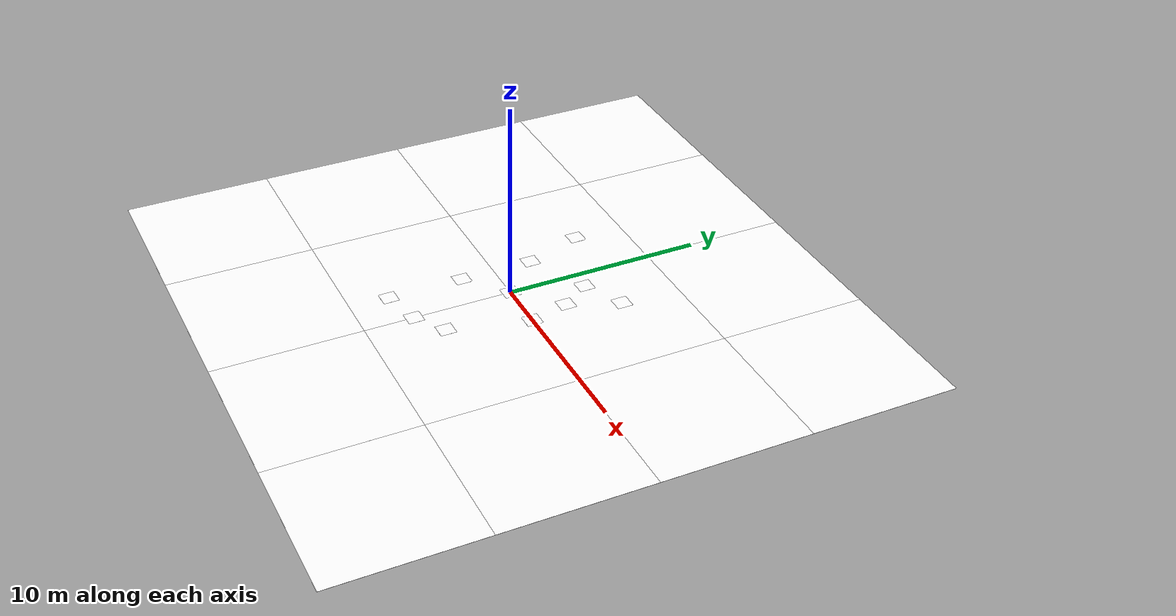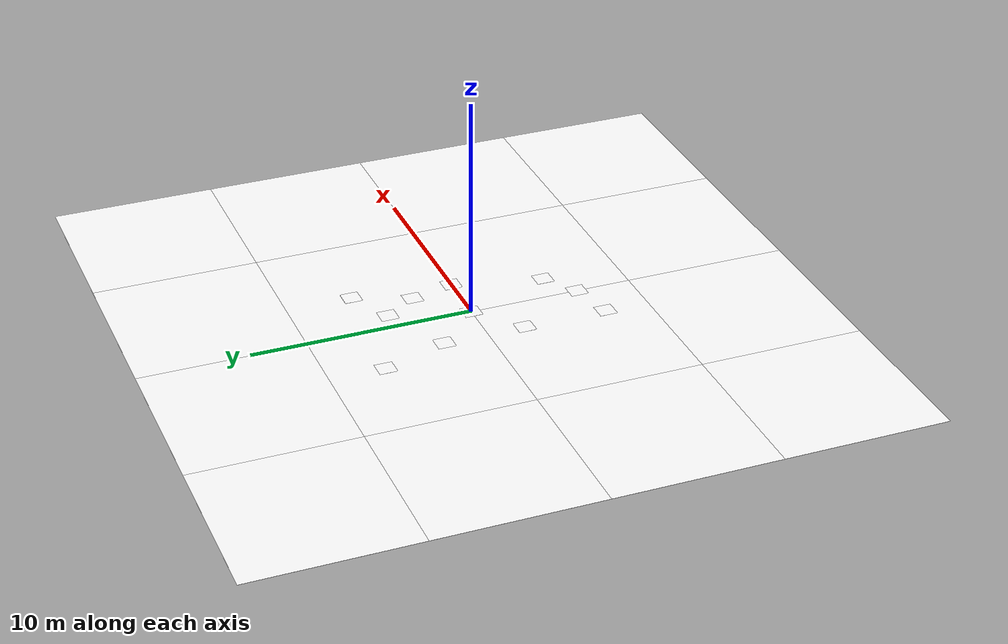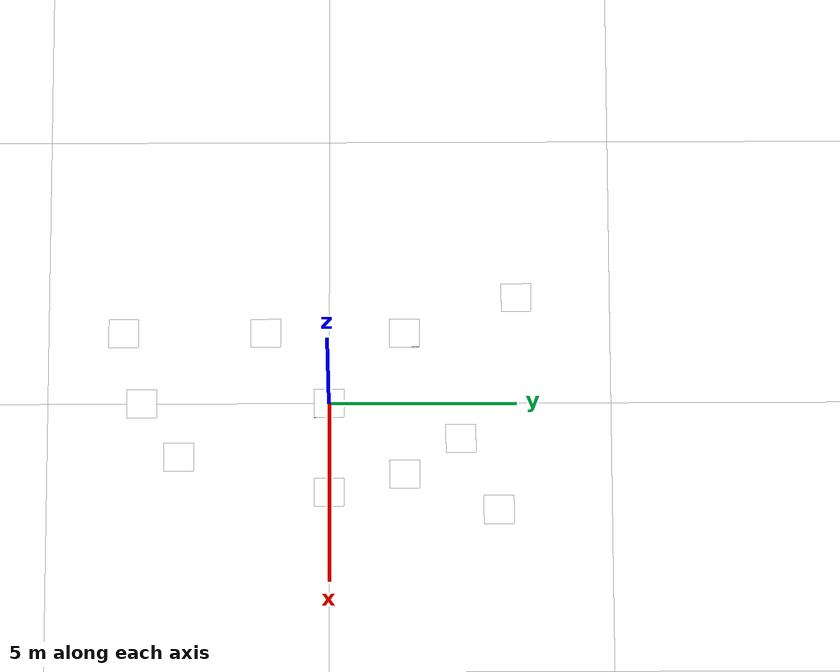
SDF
<sdf version="1.10">
 <world name="eletroquad26_m1">
  <plugin name="gz::sim::systems::Physics" filename="gz-sim-physics-system"/>
  <plugin name="gz::sim::systems::UserCommands" filename="gz-sim-user-commands-system"/>
  <plugin name="gz::sim::systems::SceneBroadcaster" filename="gz-sim-scene-broadcaster-system"/>
  <plugin name="gz::sim::systems::Contact" filename="gz-sim-contact-system"/>
  <plugin name="gz::sim::systems::Imu" filename="gz-sim-imu-system"/>
  <plugin name="gz::sim::systems::AirPressure" filename="gz-sim-air-pressure-system"/>
  <plugin name="gz::sim::systems::Sensors" filename="gz-sim-sensors-system">
   <render_engine>ogre2</render_engine>
  </plugin>
  <physics type="ode">
   <max_step_size>0.001</max_step_size>
   <real_time_factor>1</real_time_factor>
   <real_time_update_rate>1000</real_time_update_rate>
  </physics>
  <gravity>0 0 -9.8000000000000007</gravity>
  <magnetic_field>5.5644999999999998e-06 2.2875799999999999e-05 -4.2388400000000002e-05</magnetic_field>
  <atmosphere type="adiabatic"/>
  <scene>
   <ambient>0.400000006 0.400000006 0.400000006 1</ambient>
   <background>0.699999988 0.699999988 0.699999988 1</background>
   <shadows>true</shadows>
  </scene>
  <model name="gabarito">
   <include merge="true"><uri>models/eletroquad_26/miscs/default_platform</uri></include>
   <pose degrees="true">2 2 0.011 0 0 -90</pose>
   <static>true</static>
  </model>
  <model name="shape0">
   <include merge="true"><uri>models/eletroquad_26/bouncing/shapes/hexagon</uri></include>
   <pose degrees="true">2 2 0.013 0 0 -90</pose>
   <static>true</static>
  </model>
  <model name="3hexagon">
   <include merge="true"><uri>models/eletroquad_26/miscs/default_platform</uri></include>
   <pose degrees="true">-3 5 0.011 0 0 -90</pose>
   <static>true</static>
  </model>
  <model name="shape1">
   <include merge="true"><uri>models/eletroquad_26/bouncing/shapes/hexagon</uri></include>
   <pose degrees="true">-3 5 0.012 0 0 -90</pose>
   <static>true</static>
  </model>
  <model name="num1">
   <include merge="true"><uri>models/eletroquad_26/bouncing/nums/num_3</uri></include>
   <pose degrees="true">-3 5 0.013 0 0 -90</pose>
   <static>true</static>
  </model>
  <model name="4hexagon">
   <include merge="true"><uri>models/eletroquad_26/miscs/default_platform</uri></include>
   <pose degrees="true">1.5 -4 0.011 0 0 -90</pose>
   <static>true</static>
  </model>
  <model name="shape2">
   <include merge="true"><uri>models/eletroquad_26/bouncing/shapes/hexagon</uri></include>
   <pose degrees="true">1.5 -4 0.012 0 0 -90</pose>
   <static>true</static>
  </model>
  <model name="num2">
   <include merge="true"><uri>models/eletroquad_26/bouncing/nums/num_4</uri></include>
   <pose degrees="true">1.5 -4 0.013 0 0 -90</pose>
   <static>true</static>
  </model>
  <model name="5hexagon">
   <include merge="true"><uri>models/eletroquad_26/miscs/default_platform</uri></include>
   <pose degrees="true">1 3.5 0.011 0 0 -90</pose>
   <static>true</static>
  </model>
  <model name="shape3">
   <include merge="true"><uri>models/eletroquad_26/bouncing/shapes/hexagon</uri></include>
   <pose degrees="true">1 3.5 0.012 0 0 -90</pose>
   <static>true</static>
  </model>
  <model name="num3">
   <include merge="true"><uri>models/eletroquad_26/bouncing/nums/num_5</uri></include>
   <pose degrees="true">1 3.5 0.013 0 0 -90</pose>
   <static>true</static>
  </model>
  <model name="3star">
   <include merge="true"><uri>models/eletroquad_26/miscs/default_platform</uri></include>
   <pose degrees="true">-2 -5.5 0.011 0 0 -90</pose>
   <static>true</static>
  </model>
  <model name="shape4">
   <include merge="true"><uri>models/eletroquad_26/bouncing/shapes/star</uri></include>
   <pose degrees="true">-2 -5.5 0.012 0 0 -90</pose>
   <static>true</static>
  </model>
  <model name="num4">
   <include merge="true"><uri>models/eletroquad_26/bouncing/nums/num_3</uri></include>
   <pose degrees="true">-2 -5.5 0.013 0 0 -90</pose>
   <static>true</static>
  </model>
  <model name="4star">
   <include merge="true"><uri>models/eletroquad_26/miscs/default_platform</uri></include>
   <pose degrees="true">-2 -1.7 0.011 0 0 -90</pose>
   <static>true</static>
  </model>
  <model name="shape5">
   <include merge="true"><uri>models/eletroquad_26/bouncing/shapes/star</uri></include>
   <pose degrees="true">-2 -1.7 0.012 0 0 -90</pose>
   <static>true</static>
  </model>
  <model name="num5">
   <include merge="true"><uri>models/eletroquad_26/bouncing/nums/num_4</uri></include>
   <pose degrees="true">-2 -1.7 0.013 0 0 -90</pose>
   <static>true</static>
  </model>
  <model name="5star">
   <include merge="true"><uri>models/eletroquad_26/miscs/default_platform</uri></include>
   <pose degrees="true">-2 2 0.011 0 0 -90</pose>
   <static>true</static>
  </model>
  <model name="shape6">
   <include merge="true"><uri>models/eletroquad_26/bouncing/shapes/star</uri></include>
   <pose degrees="true">-2 2 0.012 0 0 -90</pose>
   <static>true</static>
  </model>
  <model name="num6">
   <include merge="true"><uri>models/eletroquad_26/bouncing/nums/num_5</uri></include>
   <pose degrees="true">-2 2 0.013 0 0 -90</pose>
   <static>true</static>
  </model>
  <model name="3triangle">
   <include merge="true"><uri>models/eletroquad_26/miscs/default_platform</uri></include>
   <pose degrees="true">0 -5 0.011 0 0 -90</pose>
   <static>true</static>
  </model>
  <model name="shape7">
   <include merge="true"><uri>models/eletroquad_26/bouncing/shapes/triangle</uri></include>
   <pose degrees="true">0 -5 0.012 0 0 -90</pose>
   <static>true</static>
  </model>
  <model name="num7">
   <include merge="true"><uri>models/eletroquad_26/bouncing/nums/num_3</uri></include>
   <pose degrees="true">0 -5 0.013 0 0 -90</pose>
   <static>true</static>
  </model>
  <model name="4triangle">
   <include merge="true"><uri>models/eletroquad_26/miscs/default_platform</uri></include>
   <pose degrees="true">2.5 0 0.011 0 0 -90</pose>
   <static>true</static>
  </model>
  <model name="shape8">
   <include merge="true"><uri>models/eletroquad_26/bouncing/shapes/triangle</uri></include>
   <pose degrees="true">2.5 0 0.012 0 0 -90</pose>
   <static>true</static>
  </model>
  <model name="num8">
   <include merge="true"><uri>models/eletroquad_26/bouncing/nums/num_4</uri></include>
   <pose degrees="true">2.5 0 0.013 0 0 -90</pose>
   <static>true</static>
  </model>
  <model name="5triangle">
   <include merge="true"><uri>models/eletroquad_26/miscs/default_platform</uri></include>
   <pose degrees="true">3 4.5 0.011 0 0 -90</pose>
   <static>true</static>
  </model>
  <model name="shape9">
   <include merge="true"><uri>models/eletroquad_26/bouncing/shapes/triangle</uri></include>
   <pose degrees="true">3 4.5 0.012 0 0 -90</pose>
   <static>true</static>
  </model>
  <model name="num9">
   <include merge="true"><uri>models/eletroquad_26/bouncing/nums/num_5</uri></include>
   <pose degrees="true">3 4.5 0.013 0 0 -90</pose>
   <static>true</static>
  </model>
  <include>
   <uri>models/eletroquad_26/miscs/takeoff_platform</uri>
   <static>true</static>
   <pose degrees="true">0 0 0.011 0 0 0</pose>
  </include>
  <include>
   <uri>models/eletroquad_26/miscs/arenas/rectangle</uri>
   <static>true</static>
   <pose degrees="true">0 0 0.01 0 0 0</pose>
  </include>
  <include><uri>models/eletroquad_26/miscs/ground_level</uri></include>
  <light name="sun" type="directional">
   <pose>0 0 10 0 0 0</pose>
   <intensity>1</intensity>
   <direction>-0.5 0.10000000000000001 -0.90000000000000002</direction>
   <diffuse>0.800000012 0.800000012 0.800000012 1</diffuse>
   <specular>0.200000003 0.200000003 0.200000003 1</specular>
   <attenuation>
    <range>1000</range>
    <linear>0.01</linear>
    <constant>0.90000000000000002</constant>
    <quadratic>0.001</quadratic>
   </attenuation>
   <spot><inner_angle>0</inner_angle><outer_angle>0</outer_angle><falloff>0</falloff></spot>
  </light>
  <spherical_coordinates>
   <surface_model>EARTH_WGS84</surface_model>
   <world_frame_orientation>ENU</world_frame_orientation>
   <latitude_deg>47.397971057728974</latitude_deg>
   <longitude_deg>8.546163739800146</longitude_deg>
   <elevation>0</elevation>
  </spherical_coordinates>
 </world>
</sdf>

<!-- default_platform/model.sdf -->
<sdf version='1.10'>
<model name='default_platform'>
  <link name='default_link'>
    <enable_wind>false</enable_wind>
    <collision name='default_collision'>
      <geometry><cylinder>
        <radius>0.4</radius>
        <length>0.001</length>
      </cylinder></geometry>
      <surface>
        <friction><ode/></friction>
        <bounce/>
        <contact/>
      </surface>
    </collision>
    <visual name='default_visual'>
      <geometry><cylinder>
        <radius>0.4</radius>
        <length>0.001</length>
      </cylinder></geometry>
      <material>
        <ambient>1 1 1 1</ambient>
        <diffuse>1 1 1 1</diffuse>
        <specular>1 1 1 1</specular>
      </material>
    </visual>
  </link>
  <self_collide>false</self_collide>
  <static>true</static>
</model>
</sdf>

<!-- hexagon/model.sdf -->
<sdf version='1.10'>
<model name='hexagon'>
  <link name='hexagon_link'>
    <enable_wind>false</enable_wind>
    <visual name='hexagon_img'>
      <pose>0 0 0.001 0 0 0</pose>
      <geometry><plane>
        <normal>0 0 1</normal>
        <size>0.8 0.8</size>
      </plane></geometry>
        <material>
        <diffuse>1 1 1 1</diffuse>
        <specular>1 1 1 1</specular>
        <pbr>
          <metal>
            <albedo_map>materials/textures/hexagon.png</albedo_map>
            <metalness>0</metalness>
            <roughness>1</roughness>
          </metal>
        </pbr>
        </material>
    </visual>
  </link>
  <self_collide>false</self_collide>
  <static>true</static>
</model>
</sdf>

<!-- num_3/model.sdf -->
<sdf version='1.10'>
<model name='num_3'>
  <link name='num3_link'>
    <enable_wind>false</enable_wind>
    <visual name='num3_img'>
      <pose>0 0 0.001 0 0 0</pose>
      <geometry><plane>
        <normal>0 0 1</normal>
        <size>0.8 0.8</size>
      </plane></geometry>
        <material>
        <diffuse>1 1 1 1</diffuse>
        <specular>1 1 1 1</specular>
        <pbr>
          <metal>
            <albedo_map>materials/textures/num_3.png</albedo_map>
            <metalness>0</metalness>
            <roughness>1</roughness>
          </metal>
        </pbr>
        </material>
    </visual>
  </link>
  <self_collide>false</self_collide>
  <static>true</static>
</model>
</sdf>

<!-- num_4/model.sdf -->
<sdf version='1.10'>
<model name='num_4'>
  <link name='num4_link'>
    <enable_wind>false</enable_wind>
    <visual name='num4_img'>
      <pose>0 0 0.001 0 0 0</pose>
      <geometry><plane>
        <normal>0 0 1</normal>
        <size>0.8 0.8</size>
      </plane></geometry>
        <material>
        <diffuse>1 1 1 1</diffuse>
        <specular>1 1 1 1</specular>
        <pbr>
          <metal>
            <albedo_map>materials/textures/num_4.png</albedo_map>
            <metalness>0</metalness>
            <roughness>1</roughness>
          </metal>
        </pbr>
        </material>
    </visual>
  </link>
  <self_collide>false</self_collide>
  <static>true</static>
</model>
</sdf>

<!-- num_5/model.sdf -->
<sdf version='1.10'>
<model name='num_5'>
  <link name='num5_link'>
    <enable_wind>false</enable_wind>
    <visual name='num5_img'>
      <pose>0 0 0.001 0 0 0</pose>
      <geometry><plane>
        <normal>0 0 1</normal>
        <size>0.8 0.8</size>
      </plane></geometry>
        <material>
        <diffuse>1 1 1 1</diffuse>
        <specular>1 1 1 1</specular>
        <pbr>
          <metal>
            <albedo_map>materials/textures/num_5.png</albedo_map>
            <metalness>0</metalness>
            <roughness>1</roughness>
          </metal>
        </pbr>
        </material>
    </visual>
  </link>
  <self_collide>false</self_collide>
  <static>true</static>
</model>
</sdf>

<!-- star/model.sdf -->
<sdf version='1.10'>
<model name='star'>
  <link name='star_link'>
    <enable_wind>false</enable_wind>
    <visual name='star_img'>
      <pose>0 0 0.001 0 0 0</pose>
      <geometry><plane>
        <normal>0 0 1</normal>
        <size>0.8 0.8</size>
      </plane></geometry>
        <material>
        <diffuse>1 1 1 1</diffuse>
        <specular>1 1 1 1</specular>
        <pbr>
          <metal>
            <albedo_map>materials/textures/star.png</albedo_map>
            <metalness>0</metalness>
            <roughness>1</roughness>
          </metal>
        </pbr>
        </material>
    </visual>
  </link>
  <self_collide>false</self_collide>
  <static>true</static>
</model>
</sdf>

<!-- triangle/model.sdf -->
<sdf version='1.10'>
<model name='triangle'>
  <link name='triangle_link'>
    <enable_wind>false</enable_wind>
    <visual name='triangle_img'>
      <pose>0 0 0.001 0 0 0</pose>
      <geometry><plane>
        <normal>0 0 1</normal>
        <size>0.8 0.8</size>
      </plane></geometry>
        <material>
        <diffuse>1 1 1 1</diffuse>
        <specular>1 1 1 1</specular>
        <pbr>
          <metal>
            <albedo_map>materials/textures/triangle.png</albedo_map>
            <metalness>0</metalness>
            <roughness>1</roughness>
          </metal>
        </pbr>
        </material>
    </visual>
  </link>
  <self_collide>false</self_collide>
  <static>true</static>
</model>
</sdf>

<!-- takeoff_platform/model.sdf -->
<sdf version='1.10'>
<model name='takeoff_platform'>
  <include merge='true'><uri>models/eletroquad_26/miscs/default_platform</uri></include>
  <link name='takeoff_link'>
    <enable_wind>false</enable_wind>
    <visual name='takeoff_image'>
      <pose>0 0 0.001 0 0 0</pose>
      <geometry><plane>
        <normal>0 0 1</normal>
        <size>0.8 0.8</size>
      </plane></geometry>
        <material>
        <diffuse>1 1 1 1</diffuse>
        <specular>1 1 1 1</specular>
        <pbr>
          <metal>
            <albedo_map>materials/textures/takeoff.png</albedo_map>
            <metalness>0</metalness>
            <roughness>1</roughness>
          </metal>
        </pbr>
        </material>
    </visual>
  </link>
  <self_collide>false</self_collide>
  <static>true</static>
</model>
</sdf>

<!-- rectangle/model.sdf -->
<sdf version='1.10'>
<model name='arena'>
  <link name='arena_link'>
    <enable_wind>false</enable_wind>
    <collision name='arena_collision'>
      <geometry><plane>
        <normal>0 0 1</normal>
        <size>7 13</size>
      </plane></geometry>
      <surface>
        <friction><ode/></friction>
        <bounce/>
        <contact/>
      </surface>
    </collision>
    <visual name='arena_visual'>
      <geometry><plane>
        <normal>0 0 1</normal>
        <size>7 13</size>
      </plane></geometry>
      <material>
        <ambient>0.4 0.4 0.4 1</ambient>
        <diffuse>1 1 1 1</diffuse>
        <specular>1 1 1 1</specular>
      </material>
    </visual>
  </link>
  <self_collide>false</self_collide>
</model>
</sdf>

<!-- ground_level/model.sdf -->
<sdf version='1.9'>
  <model name='ground_plane'>
    <static>true</static>
    <pose>0 0 0 0 0 0</pose>
    <self_collide>false</self_collide>
    <link name='link'>
      <collision name='collision'>
        <geometry>
          <plane>
            <normal>0 0 1</normal>
            <size>30 30</size>
          </plane>
        </geometry>
        <surface>
          <friction>
            <ode/>
          </friction>
          <bounce/>
          <contact/>
        </surface>
      </collision>
      <visual name='visual1'>
        <pose>-11.25 -11.25 0 0 0 1.5708</pose>
        <geometry>
          <plane>
            <normal>0 0 1</normal>
            <size>7.5 7.5</size>
          </plane>
        </geometry>
        <material>
          <diffuse>1.0 1.0 1.0</diffuse>
          <specular>1.0 1.0 1.0</specular>
          <pbr>
            <metal>
              <albedo_map>materials/textures/grass.png</albedo_map>
              <metalness>0</metalness>
              <roughness>0.7</roughness>
            </metal>
          </pbr>
        </material>
      </visual>
      <visual name='visual2'>
        <pose>-3.75 -11.25 0 0 0 3.14159</pose>
        <geometry>
          <plane>
            <normal>0 0 1</normal>
            <size>7.5 7.5</size>
          </plane>
        </geometry>
        <material>
          <diffuse>1.0 1.0 1.0</diffuse>
          <specular>1.0 1.0 1.0</specular>
          <pbr>
            <metal>
              <albedo_map>materials/textures/grass.png</albedo_map>
              <metalness>0</metalness>
              <roughness>0.7</roughness>
            </metal>
          </pbr>
        </material>
      </visual>
      <visual name='visual3'>
        <pose>3.75 -11.25 0 0 0 4.71239</pose>
        <geometry>
          <plane>
            <normal>0 0 1</normal>
            <size>7.5 7.5</size>
          </plane>
        </geometry>
        <material>
          <diffuse>1.0 1.0 1.0</diffuse>
          <specular>1.0 1.0 1.0</specular>
          <pbr>
            <metal>
              <albedo_map>materials/textures/grass.png</albedo_map>
              <metalness>0</metalness>
              <roughness>0.7</roughness>
            </metal>
          </pbr>
        </material>
      </visual>
      <visual name='visual4'>
        <pose>11.25 -11.25 0 0 0 0</pose>
        <geometry>
          <plane>
            <normal>0 0 1</normal>
            <size>7.5 7.5</size>
          </plane>
        </geometry>
        <material>
          <diffuse>1.0 1.0 1.0</diffuse>
          <specular>1.0 1.0 1.0</specular>
          <pbr>
            <metal>
              <albedo_map>materials/textures/grass.png</albedo_map>
              <metalness>0</metalness>
              <roughness>0.7</roughness>
            </metal>
          </pbr>
        </material>
      </visual>
      <visual name='visual5'>
        <pose>-11.25 -3.75 0 0 0 3.14159</pose>
        <geometry>
          <plane>
            <normal>0 0 1</normal>
            <size>7.5 7.5</size>
          </plane>
        </geometry>
        <material>
          <diffuse>1.0 1.0 1.0</diffuse>
          <specular>1.0 1.0 1.0</specular>
          <pbr>
            <metal>
              <albedo_map>materials/textures/grass.png</albedo_map>
              <metalness>0</metalness>
              <roughness>0.7</roughness>
            </metal>
          </pbr>
        </material>
      </visual>
      <visual name='visual6'>
        <pose>-3.75 -3.75 0 0 0 1.5708</pose>
        <geometry>
          <plane>
            <normal>0 0 1</normal>
            <size>7.5 7.5</size>
          </plane>
        </geometry>
        <material>
          <diffuse>1.0 1.0 1.0</diffuse>
          <specular>1.0 1.0 1.0</specular>
          <pbr>
            <metal>
              <albedo_map>materials/textures/grass.png</albedo_map>
              <metalness>0</metalness>
              <roughness>0.7</roughness>
            </metal>
          </pbr>
        </material>
      </visual>
      <visual name='visual7'>
        <pose>3.75 -3.75 0 0 0 0</pose>
        <geometry>
          <plane>
            <normal>0 0 1</normal>
            <size>7.5 7.5</size>
          </plane>
        </geometry>
        <material>
          <diffuse>1.0 1.0 1.0</diffuse>
          <specular>1.0 1.0 1.0</specular>
          <pbr>
            <metal>
              <albedo_map>materials/textures/grass.png</albedo_map>
              <metalness>0</metalness>
              <roughness>0.7</roughness>
            </metal>
          </pbr>
        </material>
      </visual>
      <visual name='visual8'>
        <pose>11.25 -3.75 0 0 0 4.71239</pose>
        <geometry>
          <plane>
            <normal>0 0 1</normal>
            <size>7.5 7.5</size>
          </plane>
        </geometry>
        <material>
          <diffuse>1.0 1.0 1.0</diffuse>
          <specular>1.0 1.0 1.0</specular>
          <pbr>
            <metal>
              <albedo_map>materials/textures/grass.png</albedo_map>
              <metalness>0</metalness>
              <roughness>0.7</roughness>
            </metal>
          </pbr>
        </material>
      </visual>
      <visual name='visual9'>
        <pose>-11.25 3.75 0 0 0 0</pose>
        <geometry>
          <plane>
            <normal>0 0 1</normal>
            <size>7.5 7.5</size>
          </plane>
        </geometry>
        <material>
          <diffuse>1.0 1.0 1.0</diffuse>
          <specular>1.0 1.0 1.0</specular>
          <pbr>
            <metal>
              <albedo_map>materials/textures/grass.png</albedo_map>
              <metalness>0</metalness>
              <roughness>0.7</roughness>
            </metal>
          </pbr>
        </material>
      </visual>
      <visual name='visual10'>
        <pose>-3.75 3.75 0 0 0 0</pose>
        <geometry>
          <plane>
            <normal>0 0 1</normal>
            <size>7.5 7.5</size>
          </plane>
        </geometry>
        <material>
          <diffuse>1.0 1.0 1.0</diffuse>
          <specular>1.0 1.0 1.0</specular>
          <pbr>
            <metal>
              <albedo_map>materials/textures/grass.png</albedo_map>
              <metalness>0</metalness>
              <roughness>0.7</roughness>
            </metal>
          </pbr>
        </material>
      </visual>
      <visual name='visual11'>
        <pose>3.75 3.75 0 0 0 3.14159</pose>
        <geometry>
          <plane>
            <normal>0 0 1</normal>
            <size>7.5 7.5</size>
          </plane>
        </geometry>
        <material>
          <diffuse>1.0 1.0 1.0</diffuse>
          <specular>1.0 1.0 1.0</specular>
          <pbr>
            <metal>
              <albedo_map>materials/textures/grass.png</albedo_map>
              <metalness>0</metalness>
              <roughness>0.7</roughness>
            </metal>
          </pbr>
        </material>
      </visual>
      <visual name='visual12'>
        <pose>11.25 3.75 0 0 0 4.71239</pose>
        <geometry>
          <plane>
            <normal>0 0 1</normal>
            <size>7.5 7.5</size>
          </plane>
        </geometry>
        <material>
          <diffuse>1.0 1.0 1.0</diffuse>
          <specular>1.0 1.0 1.0</specular>
          <pbr>
            <metal>
              <albedo_map>materials/textures/grass.png</albedo_map>
              <metalness>0</metalness>
              <roughness>0.7</roughness>
            </metal>
          </pbr>
        </material>
      </visual>
      <visual name='visual13'>
        <pose>-11.25 11.25 0 0 0 1.5708</pose>
        <geometry>
          <plane>
            <normal>0 0 1</normal>
            <size>7.5 7.5</size>
          </plane>
        </geometry>
        <material>
          <diffuse>1.0 1.0 1.0</diffuse>
          <specular>1.0 1.0 1.0</specular>
          <pbr>
            <metal>
              <albedo_map>materials/textures/grass.png</albedo_map>
              <metalness>0</metalness>
              <roughness>0.7</roughness>
            </metal>
          </pbr>
        </material>
      </visual>
      <visual name='visual14'>
        <pose>-3.75 11.25 0 0 0 3.14159</pose>
        <geometry>
          <plane>
            <normal>0 0 1</normal>
            <size>7.5 7.5</size>
          </plane>
        </geometry>
        <material>
          <diffuse>1.0 1.0 1.0</diffuse>
          <specular>1.0 1.0 1.0</specular>
          <pbr>
            <metal>
              <albedo_map>materials/textures/grass.png</albedo_map>
              <metalness>0</metalness>
              <roughness>0.7</roughness>
            </metal>
          </pbr>
        </material>
      </visual>
      <visual name='visual15'>
        <pose>3.75 11.25 0 0 0 0</pose>
        <geometry>
          <plane>
            <normal>0 0 1</normal>
            <size>7.5 7.5</size>
          </plane>
        </geometry>
        <material>
          <diffuse>1.0 1.0 1.0</diffuse>
          <specular>1.0 1.0 1.0</specular>
          <pbr>
            <metal>
              <albedo_map>materials/textures/grass.png</albedo_map>
              <metalness>0</metalness>
              <roughness>0.7</roughness>
            </metal>
          </pbr>
        </material>
      </visual>
      <visual name='visual16'>
        <pose>11.25 11.25 0 0 0 0</pose>
        <geometry>
          <plane>
            <normal>0 0 1</normal>
            <size>7.5 7.5</size>
          </plane>
        </geometry>
        <material>
          <diffuse>1.0 1.0 1.0</diffuse>
          <specular>1.0 1.0 1.0</specular>
          <pbr>
            <metal>
              <albedo_map>materials/textures/grass.png</albedo_map>
              <metalness>0</metalness>
              <roughness>0.7</roughness>
            </metal>
          </pbr>
        </material>
      </visual>
      <enable_wind>false</enable_wind>
    </link>
  </model>
</sdf>
